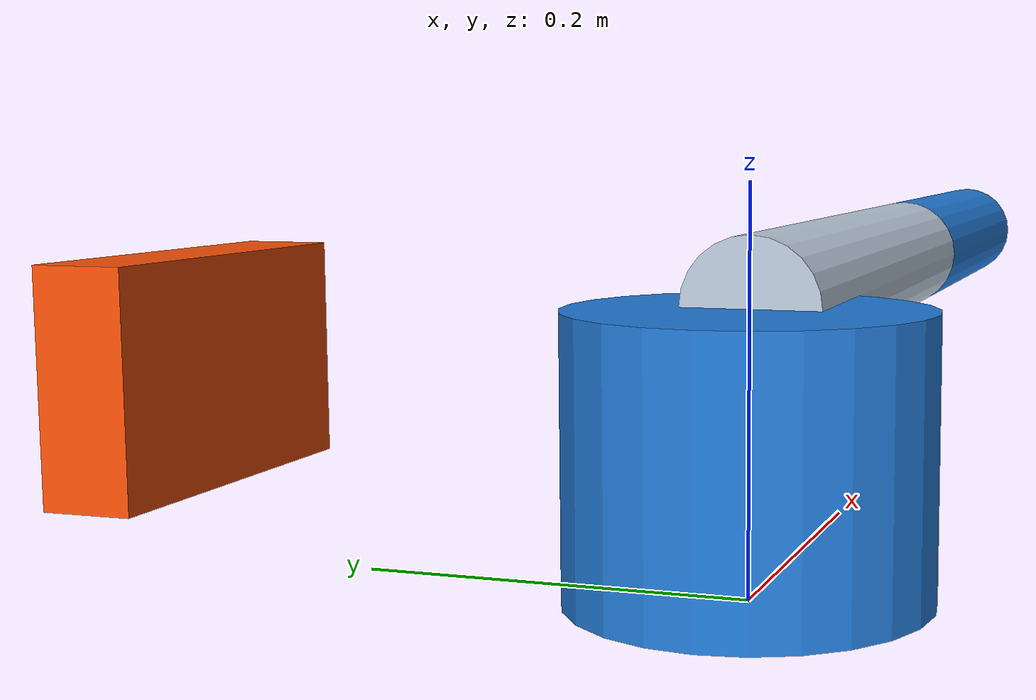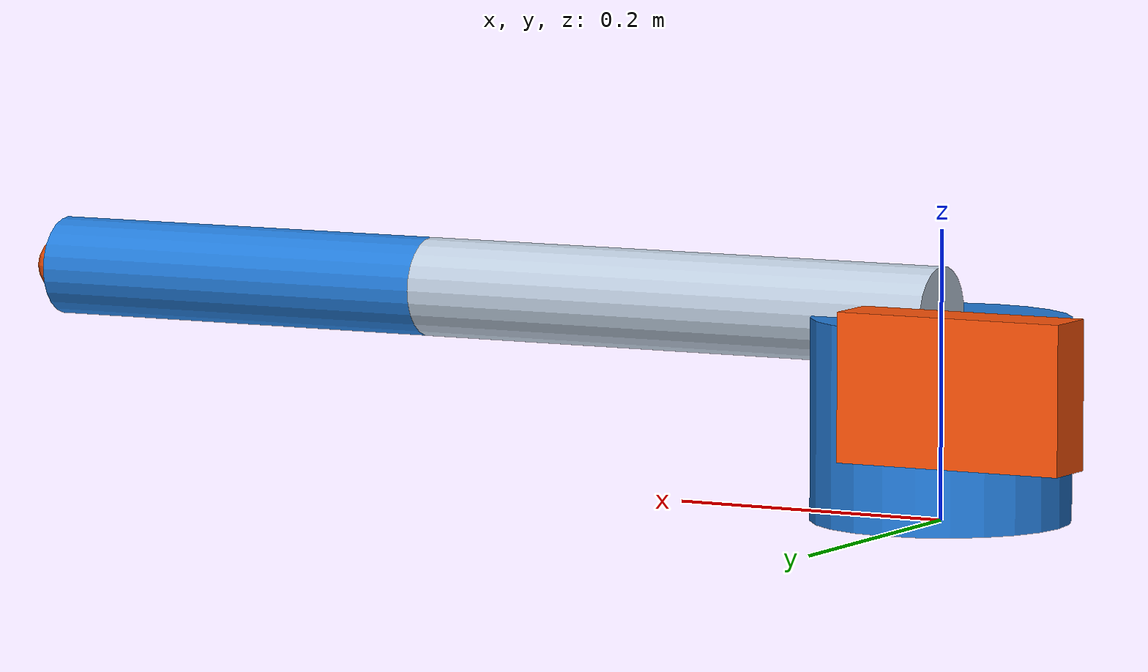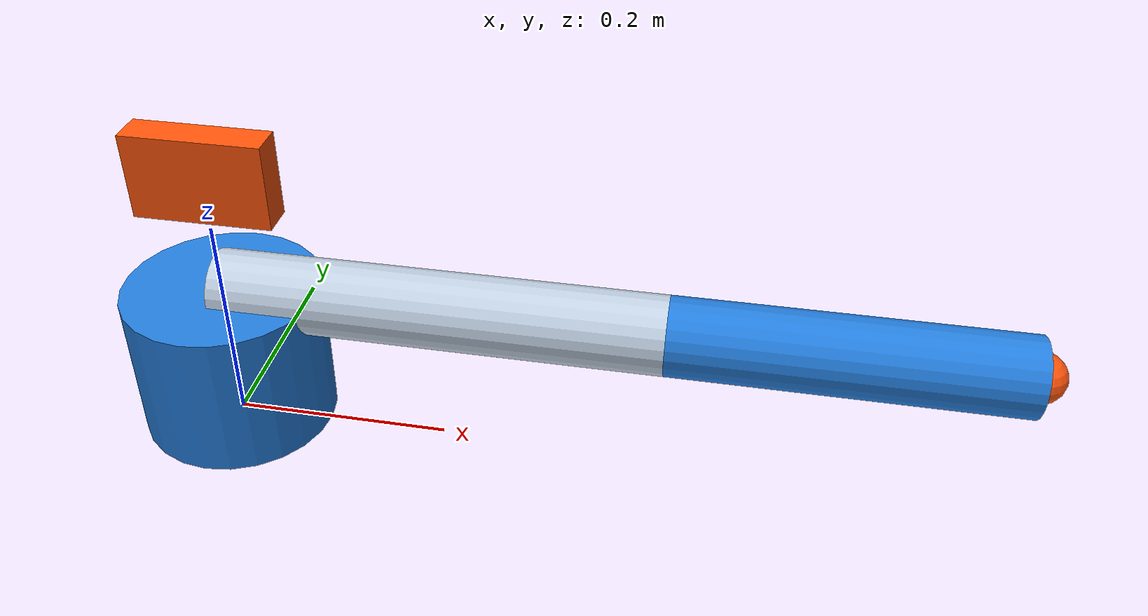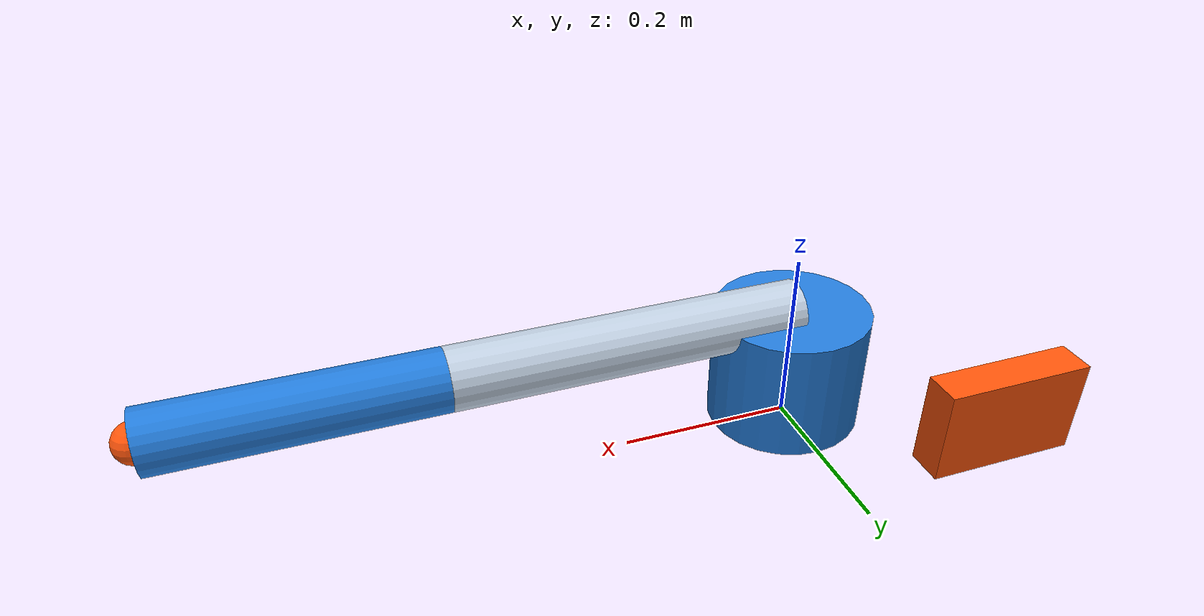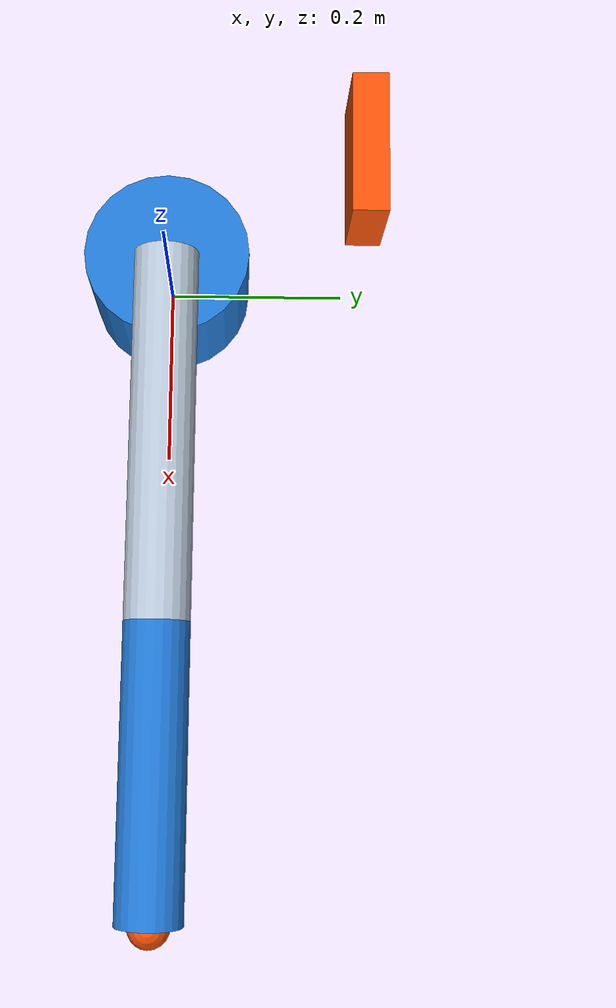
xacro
<?xml version="1.0"?>
<robot xmlns:xacro="http://www.ros.org/wiki/xacro" name="mas248_two_link_arm">

  <!-- MAS248 Lecture 8: two REVOLUTE joints, plus a FIXED TCP frame. -->
  <!-- Units: metres, kilograms and radians. No real hardware is controlled. -->
  <xacro:property name="link1_length" value="0.40"/>
  <xacro:property name="link2_length" value="0.30"/>
  <xacro:property name="arm_radius" value="0.035"/>

  <material name="MAS248Blue"><color rgba="0.14 0.49 0.86 1"/></material>
  <material name="MAS248Silver"><color rgba="0.75 0.81 0.88 1"/></material>
  <material name="MAS248Orange"><color rgba="1.0 0.33 0.04 1"/></material>

  <!-- Base: fixed reference at the world origin. -->
  <link name="base_link">
    <visual>
      <origin xyz="0 0 0.07" rpy="0 0 0"/>
      <geometry><cylinder radius="0.09" length="0.14"/></geometry>
      <material name="MAS248Blue"/>
    </visual>
    <collision>
      <origin xyz="0 0 0.07" rpy="0 0 0"/>
      <geometry><cylinder radius="0.09" length="0.14"/></geometry>
    </collision>
    <inertial>
      <origin xyz="0 0 0.07"/>
      <mass value="1.0"/>
      <inertia ixx="0.003" ixy="0" ixz="0" iyy="0.003" iyz="0" izz="0.004"/>
    </inertial>
  </link>

  <!-- Link geometry extends along local +X; cylinder axis rotated from Z to X. -->
  <link name="link1">
    <visual>
      <origin xyz="${link1_length/2} 0 0" rpy="0 ${pi/2} 0"/>
      <geometry><cylinder radius="${arm_radius}" length="${link1_length}"/></geometry>
      <material name="MAS248Silver"/>
    </visual>
    <collision>
      <origin xyz="${link1_length/2} 0 0" rpy="0 ${pi/2} 0"/>
      <geometry><cylinder radius="${arm_radius}" length="${link1_length}"/></geometry>
    </collision>
    <inertial>
      <origin xyz="${link1_length/2} 0 0"/>
      <mass value="0.30"/>
      <inertia ixx="0.000184" ixy="0" ixz="0" iyy="0.00409" iyz="0" izz="0.00409"/>
    </inertial>
  </link>

  <link name="link2">
    <visual>
      <origin xyz="${link2_length/2} 0 0" rpy="0 ${pi/2} 0"/>
      <geometry><cylinder radius="${arm_radius}" length="${link2_length}"/></geometry>
      <material name="MAS248Blue"/>
    </visual>
    <collision>
      <origin xyz="${link2_length/2} 0 0" rpy="0 ${pi/2} 0"/>
      <geometry><cylinder radius="${arm_radius}" length="${link2_length}"/></geometry>
    </collision>
    <inertial>
      <origin xyz="${link2_length/2} 0 0"/>
      <mass value="0.25"/>
      <inertia ixx="0.000153" ixy="0" ixz="0" iyy="0.00200" iyz="0" izz="0.00200"/>
    </inertial>
  </link>

  <!-- Joint 1 and joint 2 both rotate about local Z, giving a planar XY arm. -->
  <joint name="joint1" type="revolute">
    <parent link="base_link"/>
    <child link="link1"/>
    <origin xyz="0 0 0.14" rpy="0 0 0"/>
    <axis xyz="0 0 1"/>
    <limit lower="-1.57" upper="1.57" effort="10.0" velocity="1.0"/>
  </joint>
  <joint name="joint2" type="revolute">
    <parent link="link1"/>
    <child link="link2"/>
    <origin xyz="${link1_length} 0 0" rpy="0 0 0"/>
    <axis xyz="0 0 1"/>
    <!-- EXERCISE 1: change joint2 limits to -0.80 ... +0.80 radians. -->
    <limit lower="-0.80" upper="0.80" effort="10.0" velocity="1.0"/>
  </joint>

  <!-- TCP is rigidly attached at the end of link2. -->
  <link name="tcp">
    <visual>
      <geometry><sphere radius="0.022"/></geometry>
      <material name="MAS248Orange"/>
    </visual>
  </link>
  <joint name="tcp_joint" type="fixed">
    <parent link="link2"/>
    <child link="tcp"/>
    <origin xyz="${link2_length} 0 0" rpy="0 0 0"/>
  </joint>

  <!-- EXERCISE 2: add a NEW rigid fixture to the base (do not alter the TCP). -->
  <!-- Suggested joint origin: xyz="-0.12 0.22 0.12" rpy="0 0 0". -->
  <!-- Verify base_link -> fixture_link remains fixed while joint1/joint2 move. -->
<!-- Fixed fixture -->
<link name="fixture_link">
  <visual>
    <geometry>
      <box size="0.16 0.04 0.10"/>
    </geometry>
    <material name="MAS248Orange"/>
  </visual>
</link>

<joint name="fixture_joint" type="fixed">
  <parent link="base_link"/>
  <child link="fixture_link"/>
  <origin xyz="-0.12 0.22 0.12" rpy="0 0 0"/>
</joint>
</robot>
